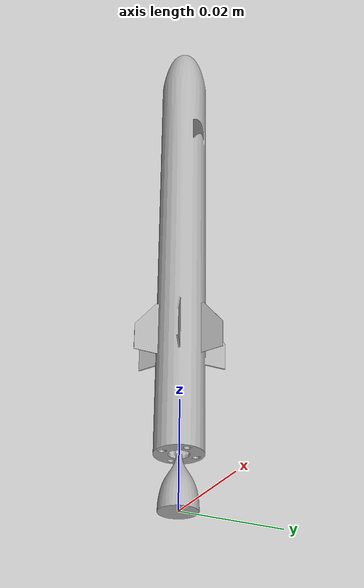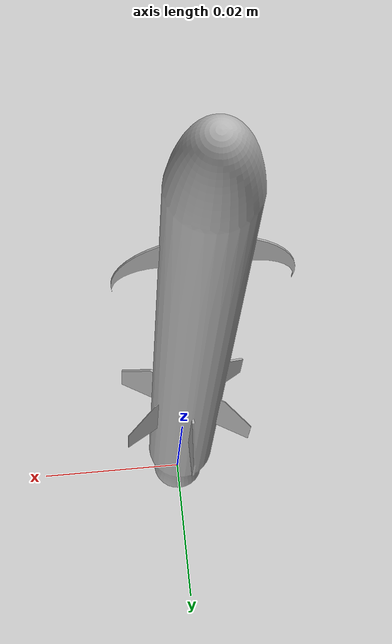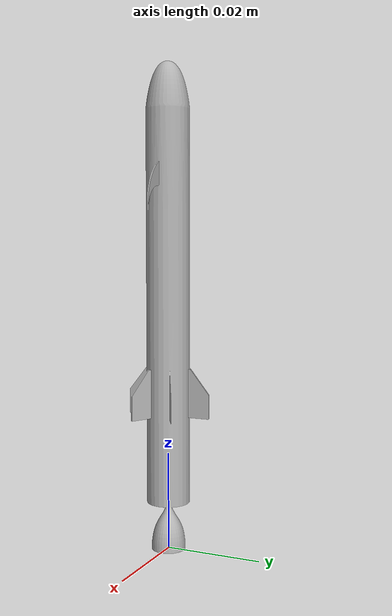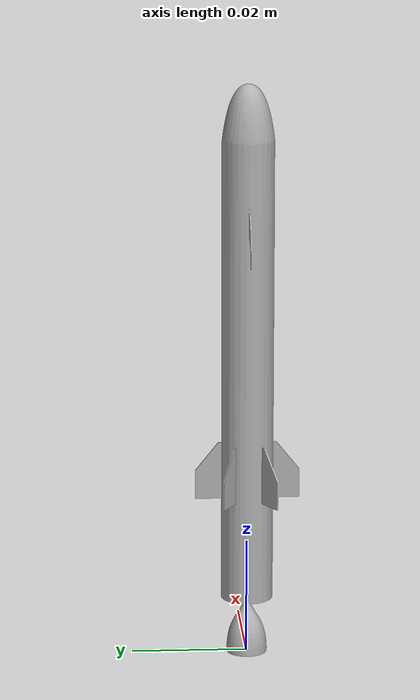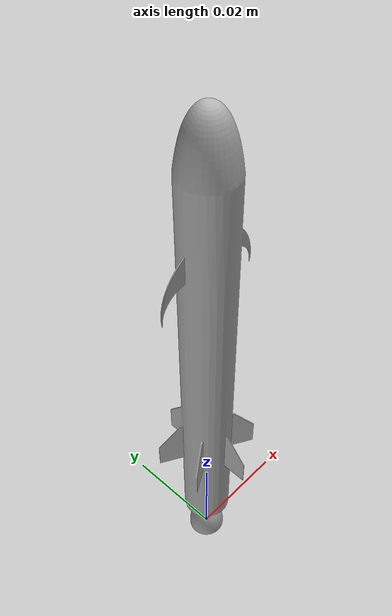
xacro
<?xml version="1.0" ?>
<robot name="rocket" xmlns:xacro="http://www.ros.org/wiki/xacro">

<xacro:include filename="$(find rocket_description)/urdf/materials.xacro" />
<xacro:include filename="$(find rocket_description)/urdf/rocket.trans" />
<xacro:include filename="$(find rocket_description)/urdf/rocket.gazebo" />
<link name="base_link">
  <inertial>
    <origin xyz="-1.165726332011666e-14 5.706989665676984e-06 0.5464752172969405" rpy="0 0 0"/>
    <mass value="9.506573887591763"/>
    <inertia ixx="1.172174" iyy="1.172395" izz="0.011078" ixy="0.0" iyz="-1.2e-05" ixz="-0.0"/>
  </inertial>
  <visual>
    <origin xyz="0 0 0" rpy="0 0 0"/>
    <geometry>
      <mesh filename="package://rocket_description/meshes/base_link.stl" scale="0.001 0.001 0.001"/>
    </geometry>
    <material name="silver"/>
  </visual>
  <collision>
    <origin xyz="0 0 0" rpy="0 0 0"/>
    <geometry>
      <mesh filename="package://rocket_description/meshes/base_link.stl" scale="0.001 0.001 0.001"/>
    </geometry>
  </collision>
</link>

</robot>

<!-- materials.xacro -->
<robot name="rocket" xmlns:xacro="http://www.ros.org/wiki/xacro" >

<material name="silver">
  <color rgba="0.700 0.700 0.700 1.000"/>
</material>

</robot>

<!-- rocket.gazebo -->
<robot name="rocket" xmlns:xacro="http://www.ros.org/wiki/xacro" >

<xacro:property name="body_color" value="Gazebo/Silver" />

<gazebo>
    <plugin name="rocket_plugin" filename="librocket_vis.so"/>
</gazebo>
<gazebo reference="base_link">
  <material>${body_color}</material>
  <mu1>0.2</mu1>
  <mu2>0.2</mu2>
  <selfCollide>false</selfCollide>
  <gravity>true</gravity>
  <kinematic>true</kinematic>
</gazebo>

</robot>
